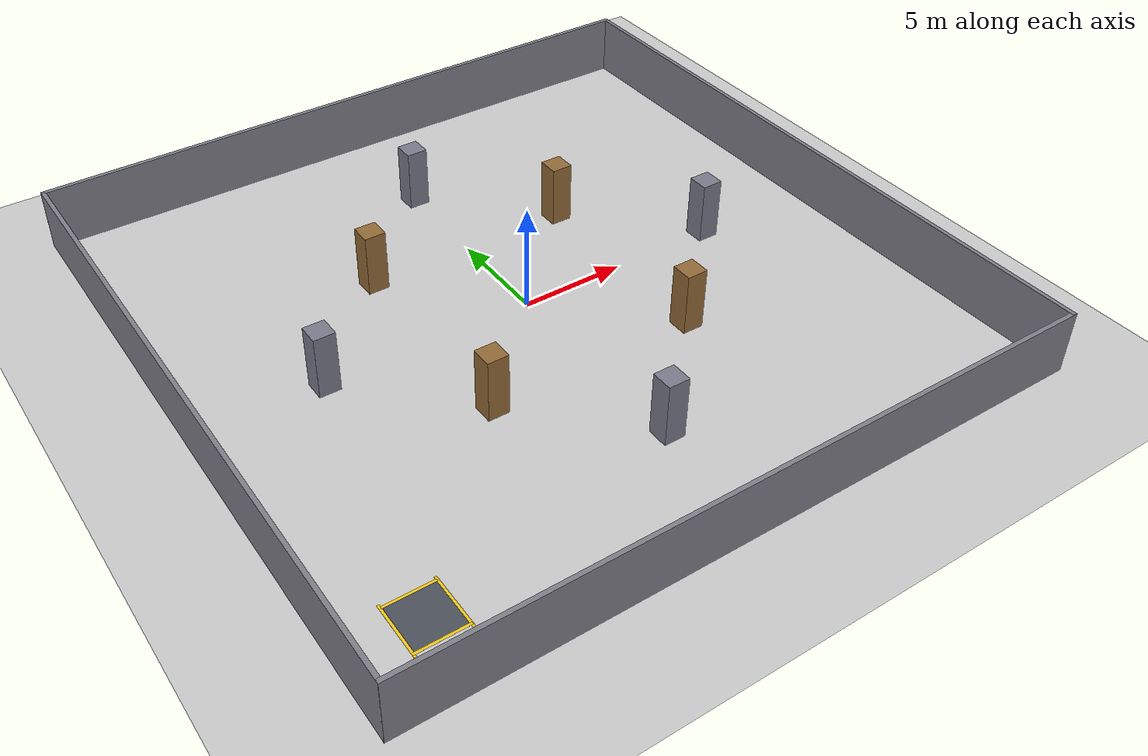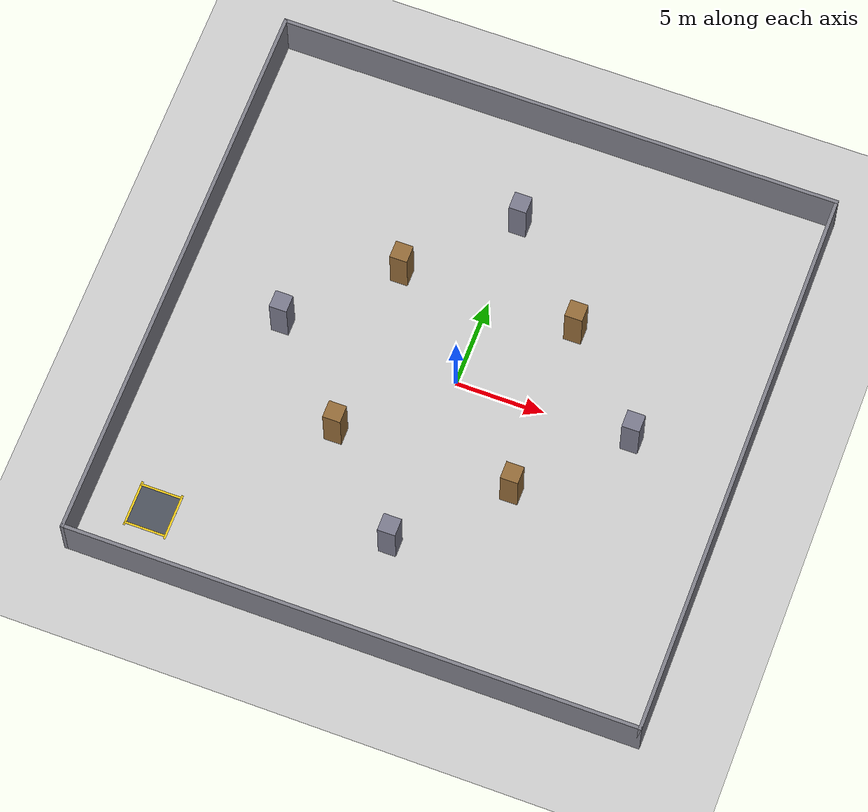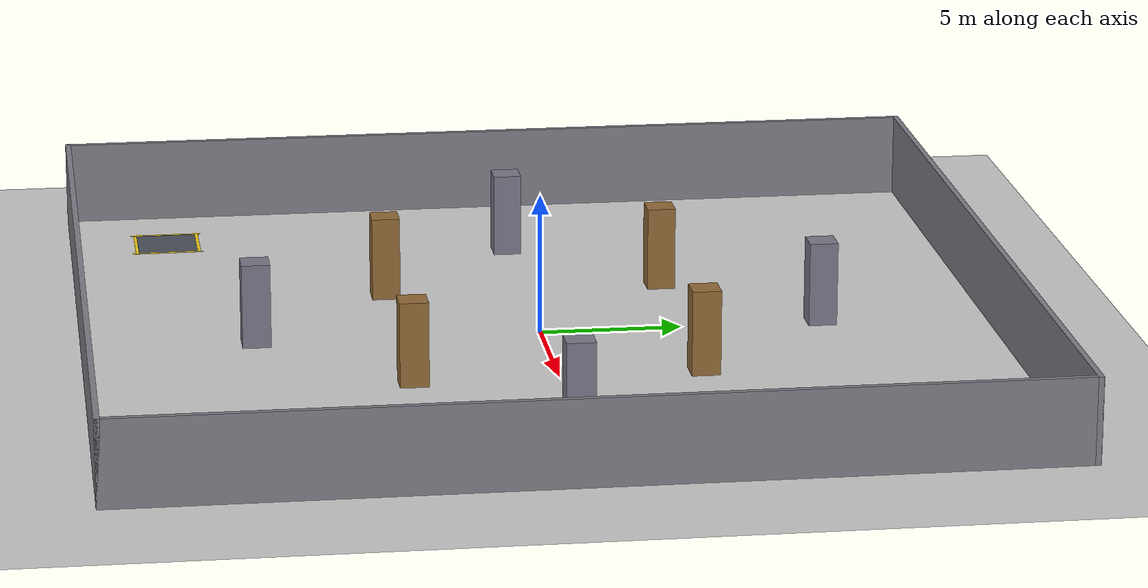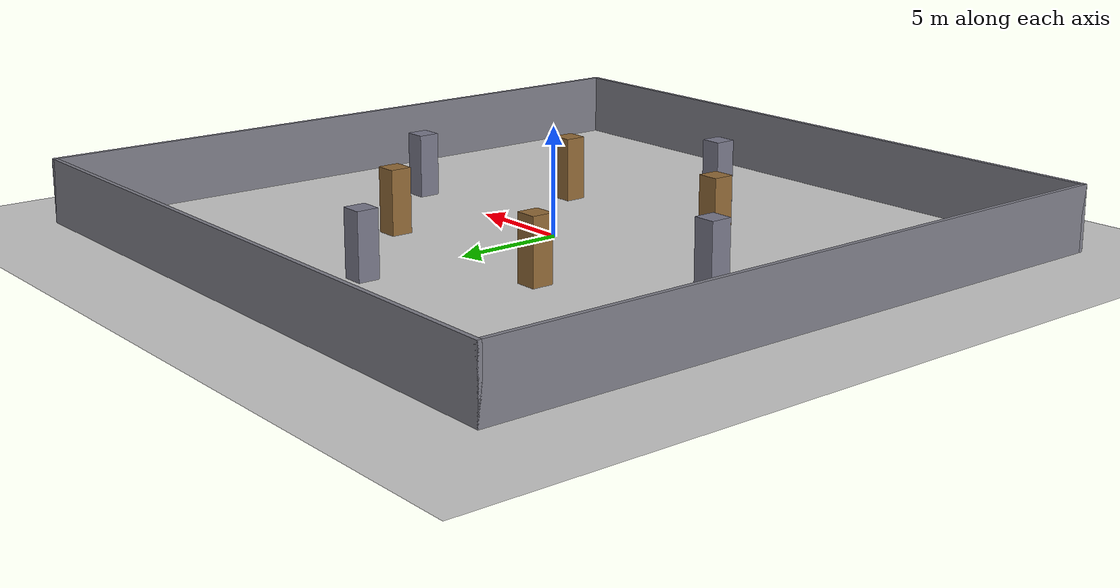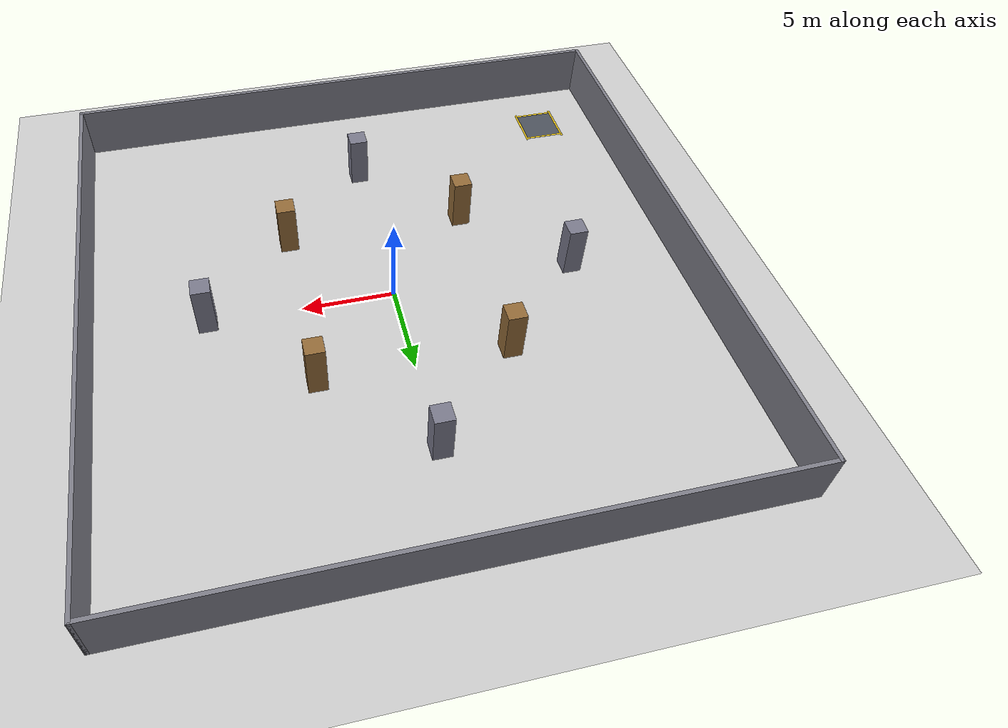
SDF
<?xml version="1.0"?>
<sdf version="1.6">
  <world name="default">

    <include><uri>model://sun</uri></include>
    <include><uri>model://ground_plane</uri></include>

    <plugin name="ros_link_attacher_plugin" filename="libgazebo_ros_link_attacher.so" />

    <scene>
      <ambient>0.65 0.65 0.65 1</ambient>
      <background>0.7 0.8 0.9 1</background>
      <shadows>false</shadows>
    </scene>

    <physics type="ode">
      <max_step_size>0.001</max_step_size>
      <real_time_update_rate>1000</real_time_update_rate>
    </physics>

    <model name="warehouse_apron">
      <static>true</static><pose>-12.5 -12.5 0.001 0 0 0</pose>
      <link name="link"><visual name="v">
        <geometry><box><size>2.4 2.4 0.002</size></box></geometry>
        <material><ambient>0.16 0.16 0.19 1</ambient><diffuse>0.30 0.32 0.36 1</diffuse>
          <emissive>0.09 0.09 0.11 1</emissive></material></visual></link>
    </model>

    <model name="warehouse_edge_n">
      <static>true</static><pose>-12.5 -11.35 0.0015 0 0 0</pose>
      <link name="link"><visual name="v">
        <geometry><box><size>2.4 0.12 0.002</size></box></geometry>
        <material><ambient>0.35 0.30 0.05 1</ambient><diffuse>0.95 0.80 0.10 1</diffuse>
          <emissive>0.25 0.21 0.03 1</emissive></material></visual></link>
    </model>
    <model name="warehouse_edge_s">
      <static>true</static><pose>-12.5 -13.65 0.0015 0 0 0</pose>
      <link name="link"><visual name="v">
        <geometry><box><size>2.4 0.12 0.002</size></box></geometry>
        <material><ambient>0.35 0.30 0.05 1</ambient><diffuse>0.95 0.80 0.10 1</diffuse>
          <emissive>0.25 0.21 0.03 1</emissive></material></visual></link>
    </model>
    <model name="warehouse_edge_e">
      <static>true</static><pose>-11.35 -12.5 0.0015 0 0 0</pose>
      <link name="link"><visual name="v">
        <geometry><box><size>0.12 2.64 0.002</size></box></geometry>
        <material><ambient>0.35 0.30 0.05 1</ambient><diffuse>0.95 0.80 0.10 1</diffuse>
          <emissive>0.25 0.21 0.03 1</emissive></material></visual></link>
    </model>
    <model name="warehouse_edge_w">
      <static>true</static><pose>-13.65 -12.5 0.0015 0 0 0</pose>
      <link name="link"><visual name="v">
        <geometry><box><size>0.12 2.64 0.002</size></box></geometry>
        <material><ambient>0.35 0.30 0.05 1</ambient><diffuse>0.95 0.80 0.10 1</diffuse>
          <emissive>0.25 0.21 0.03 1</emissive></material></visual></link>
    </model>

    <!-- ============================== crates ==============================
         Spread through the customer area, which is where the flying is now.
         3 m tall, so no transit layer clears them. -->

    <model name="crates_a">
      <static>true</static><pose>5 5 1.5 0 0 0</pose>
      <link name="link">
        <collision name="c"><geometry><box><size>1.0 1.0 3.0</size></box></geometry></collision>
        <visual name="v"><geometry><box><size>1.0 1.0 3.0</size></box></geometry>
          <material><ambient>0.30 0.22 0.12 1</ambient><diffuse>0.58 0.42 0.22 1</diffuse></material></visual>
      </link>
    </model>
    <model name="crates_b">
      <static>true</static><pose>-5 5 1.5 0 0 0</pose>
      <link name="link">
        <collision name="c"><geometry><box><size>1.0 1.0 3.0</size></box></geometry></collision>
        <visual name="v"><geometry><box><size>1.0 1.0 3.0</size></box></geometry>
          <material><ambient>0.30 0.22 0.12 1</ambient><diffuse>0.58 0.42 0.22 1</diffuse></material></visual>
      </link>
    </model>
    <model name="crates_c">
      <static>true</static><pose>5 -5 1.5 0 0 0</pose>
      <link name="link">
        <collision name="c"><geometry><box><size>1.0 1.0 3.0</size></box></geometry></collision>
        <visual name="v"><geometry><box><size>1.0 1.0 3.0</size></box></geometry>
          <material><ambient>0.30 0.22 0.12 1</ambient><diffuse>0.58 0.42 0.22 1</diffuse></material></visual>
      </link>
    </model>
    <model name="crates_d">
      <static>true</static><pose>-5 -5 1.5 0 0 0</pose>
      <link name="link">
        <collision name="c"><geometry><box><size>1.0 1.0 3.0</size></box></geometry></collision>
        <visual name="v"><geometry><box><size>1.0 1.0 3.0</size></box></geometry>
          <material><ambient>0.30 0.22 0.12 1</ambient><diffuse>0.58 0.42 0.22 1</diffuse></material></visual>
      </link>
    </model>
    <model name="crates_e">
      <static>true</static><pose>10 0 1.5 0 0 0</pose>
      <link name="link">
        <collision name="c"><geometry><box><size>1.0 1.0 3.0</size></box></geometry></collision>
        <visual name="v"><geometry><box><size>1.0 1.0 3.0</size></box></geometry>
          <material><ambient>0.26 0.26 0.30 1</ambient><diffuse>0.48 0.48 0.55 1</diffuse></material></visual>
      </link>
    </model>
    <model name="crates_f">
      <static>true</static><pose>-10 0 1.5 0 0 0</pose>
      <link name="link">
        <collision name="c"><geometry><box><size>1.0 1.0 3.0</size></box></geometry></collision>
        <visual name="v"><geometry><box><size>1.0 1.0 3.0</size></box></geometry>
          <material><ambient>0.26 0.26 0.30 1</ambient><diffuse>0.48 0.48 0.55 1</diffuse></material></visual>
      </link>
    </model>
    <model name="crates_g">
      <static>true</static><pose>0 10 1.5 0 0 0</pose>
      <link name="link">
        <collision name="c"><geometry><box><size>1.0 1.0 3.0</size></box></geometry></collision>
        <visual name="v"><geometry><box><size>1.0 1.0 3.0</size></box></geometry>
          <material><ambient>0.26 0.26 0.30 1</ambient><diffuse>0.48 0.48 0.55 1</diffuse></material></visual>
      </link>
    </model>
    <model name="crates_h">
      <static>true</static><pose>0 -10 1.5 0 0 0</pose>
      <link name="link">
        <collision name="c"><geometry><box><size>1.0 1.0 3.0</size></box></geometry></collision>
        <visual name="v"><geometry><box><size>1.0 1.0 3.0</size></box></geometry>
          <material><ambient>0.26 0.26 0.30 1</ambient><diffuse>0.48 0.48 0.55 1</diffuse></material></visual>
      </link>
    </model>

    <!-- =============================== walls =============================== -->

    <model name="wall_north">
      <static>true</static><pose>0 16 1.5 0 0 0</pose>
      <link name="link">
        <collision name="c"><geometry><box><size>32.2 0.2 3.0</size></box></geometry></collision>
        <visual name="v"><geometry><box><size>32.2 0.2 3.0</size></box></geometry>
          <material><ambient>0.30 0.30 0.32 1</ambient><diffuse>0.50 0.50 0.54 1</diffuse></material></visual>
      </link>
    </model>
    <model name="wall_south">
      <static>true</static><pose>0 -16 1.5 0 0 0</pose>
      <link name="link">
        <collision name="c"><geometry><box><size>32.2 0.2 3.0</size></box></geometry></collision>
        <visual name="v"><geometry><box><size>32.2 0.2 3.0</size></box></geometry>
          <material><ambient>0.30 0.30 0.32 1</ambient><diffuse>0.50 0.50 0.54 1</diffuse></material></visual>
      </link>
    </model>
    <model name="wall_east">
      <static>true</static><pose>16 0 1.5 0 0 0</pose>
      <link name="link">
        <collision name="c"><geometry><box><size>0.2 32.2 3.0</size></box></geometry></collision>
        <visual name="v"><geometry><box><size>0.2 32.2 3.0</size></box></geometry>
          <material><ambient>0.30 0.30 0.32 1</ambient><diffuse>0.50 0.50 0.54 1</diffuse></material></visual>
      </link>
    </model>
    <model name="wall_west">
      <static>true</static><pose>-16 0 1.5 0 0 0</pose>
      <link name="link">
        <collision name="c"><geometry><box><size>0.2 32.2 3.0</size></box></geometry></collision>
        <visual name="v"><geometry><box><size>0.2 32.2 3.0</size></box></geometry>
          <material><ambient>0.30 0.30 0.32 1</ambient><diffuse>0.50 0.50 0.54 1</diffuse></material></visual>
      </link>
    </model>

    <gui>
      <camera name="user_camera">
        <pose>-26 -26 20 0 0.5 0.785</pose>
      </camera>
    </gui>

  </world>
</sdf>
